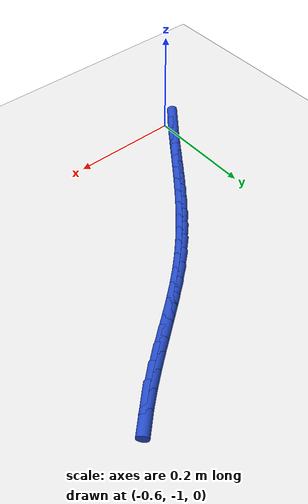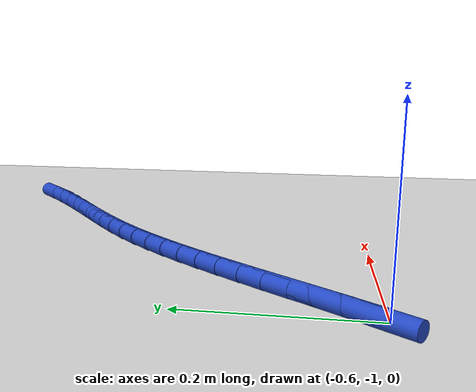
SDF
<sdf version="1.6">
 <world name="default">
  <model name="ground_plane">
   <static>1</static>
   <link name="link">
    <collision name="collision">
     <geometry><plane><normal>0 0 1</normal><size>100 100</size></plane></geometry>
     <surface><friction><ode><mu>100</mu><mu2>50</mu2></ode></friction></surface>
    </collision>
    <visual name="visual">
     <cast_shadows>0</cast_shadows>
     <geometry><plane><normal>0 0 1</normal><size>100 100</size></plane></geometry>
     <material>
      <script><uri>file://media/materials/scripts/gazebo.material</uri><name>Gazebo/WhiteGlow</name></script>
     </material>
    </visual>
   </link>
  </model>
  <model name="line">
   <link name="link_210">
    <pose>-0.6115232054475179 -0.9889539506249951 0.01 0 1.57 0.9099343579599768</pose>
    <collision name="collision">
     <geometry><cylinder><radius>0.01</radius><length>0.08</length></cylinder></geometry>
    </collision>
    <visual name="visual">
     <material>
      <script><name>Gazebo/Blue</name><uri>file://media/materials/scripts/gazebo.material</uri></script>
     </material>
     <geometry><cylinder><radius>0.01</radius><length>0.08</length></cylinder></geometry>
    </visual>
   </link>
   <link name="link_211">
    <pose>-0.5907092540252727 -0.9621831476180527 0.01 0 1.57 0.9260024669008896</pose>
    <collision name="collision">
     <geometry><cylinder><radius>0.01</radius><length>0.08</length></cylinder></geometry>
    </collision>
    <visual name="visual">
     <material>
      <script><name>Gazebo/Blue</name><uri>file://media/materials/scripts/gazebo.material</uri></script>
     </material>
     <geometry><cylinder><radius>0.01</radius><length>0.08</length></cylinder></geometry>
    </visual>
   </link>
   <link name="link_212">
    <pose>-0.570392568574799 -0.9351670649030283 0.01 0 1.57 0.9343845424338979</pose>
    <collision name="collision">
     <geometry><cylinder><radius>0.01</radius><length>0.08</length></cylinder></geometry>
    </collision>
    <visual name="visual">
     <material>
      <script><name>Gazebo/Blue</name><uri>file://media/materials/scripts/gazebo.material</uri></script>
     </material>
     <geometry><cylinder><radius>0.01</radius><length>0.08</length></cylinder></geometry>
    </visual>
   </link>
   <link name="link_213">
    <pose>-0.5505472619356222 -0.9083121150207599 0.01 0 1.57 0.9350295317920614</pose>
    <collision name="collision">
     <geometry><cylinder><radius>0.01</radius><length>0.08</length></cylinder></geometry>
    </collision>
    <visual name="visual">
     <material>
      <script><name>Gazebo/Blue</name><uri>file://media/materials/scripts/gazebo.material</uri></script>
     </material>
     <geometry><cylinder><radius>0.01</radius><length>0.08</length></cylinder></geometry>
    </visual>
   </link>
   <link name="link_214">
    <pose>-0.5311473438488598 -0.8820244143524459 0.01 0 1.57 0.9285617783888008</pose>
    <collision name="collision">
     <geometry><cylinder><radius>0.01</radius><length>0.08</length></cylinder></geometry>
    </collision>
    <visual name="visual">
     <material>
      <script><name>Gazebo/Blue</name><uri>file://media/materials/scripts/gazebo.material</uri></script>
     </material>
     <geometry><cylinder><radius>0.01</radius><length>0.08</length></cylinder></geometry>
    </visual>
   </link>
   <link name="link_215">
    <pose>-0.5121278099130566 -0.8565980075744495 0.01 0 1.57 0.9172506694545063</pose>
    <collision name="collision">
     <geometry><cylinder><radius>0.01</radius><length>0.08</length></cylinder></geometry>
    </collision>
    <visual name="visual">
     <material>
      <script><name>Gazebo/Blue</name><uri>file://media/materials/scripts/gazebo.material</uri></script>
     </material>
     <geometry><cylinder><radius>0.01</radius><length>0.08</length></cylinder></geometry>
    </visual>
   </link>
   <link name="link_216">
    <pose>-0.49332612555968214 -0.832046775007948 0.01 0 1.57 0.9012945484647757</pose>
    <collision name="collision">
     <geometry><cylinder><radius>0.01</radius><length>0.08</length></cylinder></geometry>
    </collision>
    <visual name="visual">
     <material>
      <script><name>Gazebo/Blue</name><uri>file://media/materials/scripts/gazebo.material</uri></script>
     </material>
     <geometry><cylinder><radius>0.01</radius><length>0.08</length></cylinder></geometry>
    </visual>
   </link>
   <link name="link_217">
    <pose>-0.47456476516854695 -0.8083415338025117 0.01 0 1.57 0.8805907420958404</pose>
    <collision name="collision">
     <geometry><cylinder><radius>0.01</radius><length>0.08</length></cylinder></geometry>
    </collision>
    <visual name="visual">
     <material>
      <script><name>Gazebo/Blue</name><uri>file://media/materials/scripts/gazebo.material</uri></script>
     </material>
     <geometry><cylinder><radius>0.01</radius><length>0.08</length></cylinder></geometry>
    </visual>
   </link>
   <link name="link_218">
    <pose>-0.45566620311946154 -0.7854531011077113 0.01 0 1.57 0.855176519450175</pose>
    <collision name="collision">
     <geometry><cylinder><radius>0.01</radius><length>0.08</length></cylinder></geometry>
    </collision>
    <visual name="visual">
     <material>
      <script><name>Gazebo/Blue</name><uri>file://media/materials/scripts/gazebo.material</uri></script>
     </material>
     <geometry><cylinder><radius>0.01</radius><length>0.08</length></cylinder></geometry>
    </visual>
   </link>
   <link name="link_219">
    <pose>-0.4364529137922365 -0.763352294073117 0.01 0 1.57 0.8252529429556366</pose>
    <collision name="collision">
     <geometry><cylinder><radius>0.01</radius><length>0.08</length></cylinder></geometry>
    </collision>
    <visual name="visual">
     <material>
      <script><name>Gazebo/Blue</name><uri>file://media/materials/scripts/gazebo.material</uri></script>
     </material>
     <geometry><cylinder><radius>0.01</radius><length>0.08</length></cylinder></geometry>
    </visual>
   </link>
   <link name="link_220">
    <pose>-0.4167473715666823 -0.7420099298482999 0.01 0 1.57 0.7911993341892865</pose>
    <collision name="collision">
     <geometry><cylinder><radius>0.01</radius><length>0.08</length></cylinder></geometry>
    </collision>
    <visual name="visual">
     <material>
      <script><name>Gazebo/Blue</name><uri>file://media/materials/scripts/gazebo.material</uri></script>
     </material>
     <geometry><cylinder><radius>0.01</radius><length>0.08</length></cylinder></geometry>
    </visual>
   </link>
   <link name="link_221">
    <pose>-0.3963720508226095 -0.7213968255828299 0.01 0 1.57 0.753572836975296</pose>
    <collision name="collision">
     <geometry><cylinder><radius>0.01</radius><length>0.08</length></cylinder></geometry>
    </collision>
    <visual name="visual">
     <material>
      <script><name>Gazebo/Blue</name><uri>file://media/materials/scripts/gazebo.material</uri></script>
     </material>
     <geometry><cylinder><radius>0.01</radius><length>0.08</length></cylinder></geometry>
    </visual>
   </link>
   <link name="link_222">
    <pose>-0.37514942593982864 -0.7014837984262777 0.01 0 1.57 0.7137696233318515</pose>
    <collision name="collision">
     <geometry><cylinder><radius>0.01</radius><length>0.08</length></cylinder></geometry>
    </collision>
    <visual name="visual">
     <material>
      <script><name>Gazebo/Blue</name><uri>file://media/materials/scripts/gazebo.material</uri></script>
     </material>
     <geometry><cylinder><radius>0.01</radius><length>0.08</length></cylinder></geometry>
    </visual>
   </link>
   <link name="link_223">
    <pose>-0.35292344597336295 -0.6822337752808849 0.01 0 1.57 0.6804926548857888</pose>
    <collision name="collision">
     <geometry><cylinder><radius>0.01</radius><length>0.08</length></cylinder></geometry>
    </collision>
    <visual name="visual">
     <material>
      <script><name>Gazebo/Blue</name><uri>file://media/materials/scripts/gazebo.material</uri></script>
     </material>
     <geometry><cylinder><radius>0.01</radius><length>0.08</length></cylinder></geometry>
    </visual>
   </link>
   <link name="link_224">
    <pose>-0.32979791998123686 -0.663514205018412 0.01 0 1.57 0.6587813569772625</pose>
    <collision name="collision">
     <geometry><cylinder><radius>0.01</radius><length>0.08</length></cylinder></geometry>
    </collision>
    <visual name="visual">
     <material>
      <script><name>Gazebo/Blue</name><uri>file://media/materials/scripts/gazebo.material</uri></script>
     </material>
     <geometry><cylinder><radius>0.01</radius><length>0.08</length></cylinder></geometry>
    </visual>
   </link>
   <link name="link_225">
    <pose>-0.3060492910951461 -0.6451291071211103 0.01 0 1.57 0.6482290724115842</pose>
    <collision name="collision">
     <geometry><cylinder><radius>0.01</radius><length>0.08</length></cylinder></geometry>
    </collision>
    <visual name="visual">
     <material>
      <script><name>Gazebo/Blue</name><uri>file://media/materials/scripts/gazebo.material</uri></script>
     </material>
     <geometry><cylinder><radius>0.01</radius><length>0.08</length></cylinder></geometry>
    </visual>
   </link>
   <link name="link_226">
    <pose>-0.28195711204627916 -0.6268813585389771 0.01 0 1.57 0.6485262959948089</pose>
    <collision name="collision">
     <geometry><cylinder><radius>0.01</radius><length>0.08</length></cylinder></geometry>
    </collision>
    <visual name="visual">
     <material>
      <script><name>Gazebo/Blue</name><uri>file://media/materials/scripts/gazebo.material</uri></script>
     </material>
     <geometry><cylinder><radius>0.01</radius><length>0.08</length></cylinder></geometry>
    </visual>
   </link>
   <link name="link_227">
    <pose>-0.25780093556582445 -0.608573836222009 0.01 0 1.57 0.6595823933658259</pose>
    <collision name="collision">
     <geometry><cylinder><radius>0.01</radius><length>0.08</length></cylinder></geometry>
    </collision>
    <visual name="visual">
     <material>
      <script><name>Gazebo/Blue</name><uri>file://media/materials/scripts/gazebo.material</uri></script>
     </material>
     <geometry><cylinder><radius>0.01</radius><length>0.08</length></cylinder></geometry>
    </visual>
   </link>
   <link name="link_228">
    <pose>-0.2338603143849703 -0.5900094171202026 0.01 0 1.57 0.6815185576678943</pose>
    <collision name="collision">
     <geometry><cylinder><radius>0.01</radius><length>0.08</length></cylinder></geometry>
    </collision>
    <visual name="visual">
     <material>
      <script><name>Gazebo/Blue</name><uri>file://media/materials/scripts/gazebo.material</uri></script>
     </material>
     <geometry><cylinder><radius>0.01</radius><length>0.08</length></cylinder></geometry>
    </visual>
   </link>
   <link name="link_229">
    <pose>-0.21041480123490514 -0.570990978183555 0.01 0 1.57 0.7146322627746934</pose>
    <collision name="collision">
     <geometry><cylinder><radius>0.01</radius><length>0.08</length></cylinder></geometry>
    </collision>
    <visual name="visual">
     <material>
      <script><name>Gazebo/Blue</name><uri>file://media/materials/scripts/gazebo.material</uri></script>
     </material>
     <geometry><cylinder><radius>0.01</radius><length>0.08</length></cylinder></geometry>
    </visual>
   </link>
   <link name="link_230">
    <pose>-0.1877439488468174 -0.5513213963620629 0.01 0 1.57 0.7593258829025133</pose>
    <collision name="collision">
     <geometry><cylinder><radius>0.01</radius><length>0.08</length></cylinder></geometry>
    </collision>
    <visual name="visual">
     <material>
      <script><name>Gazebo/Blue</name><uri>file://media/materials/scripts/gazebo.material</uri></script>
     </material>
     <geometry><cylinder><radius>0.01</radius><length>0.08</length></cylinder></geometry>
    </visual>
   </link>
  </model>
 </world>
</sdf>
